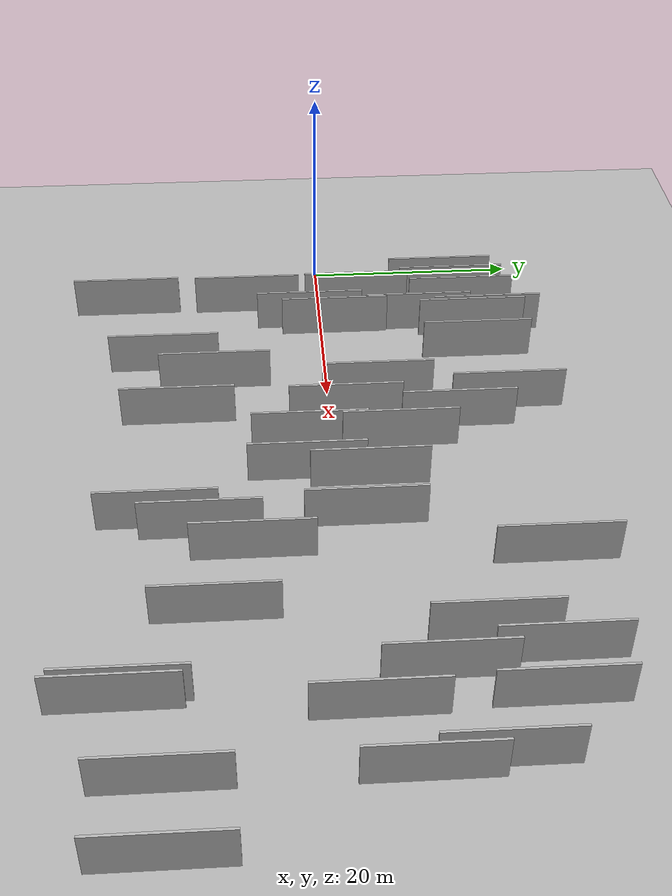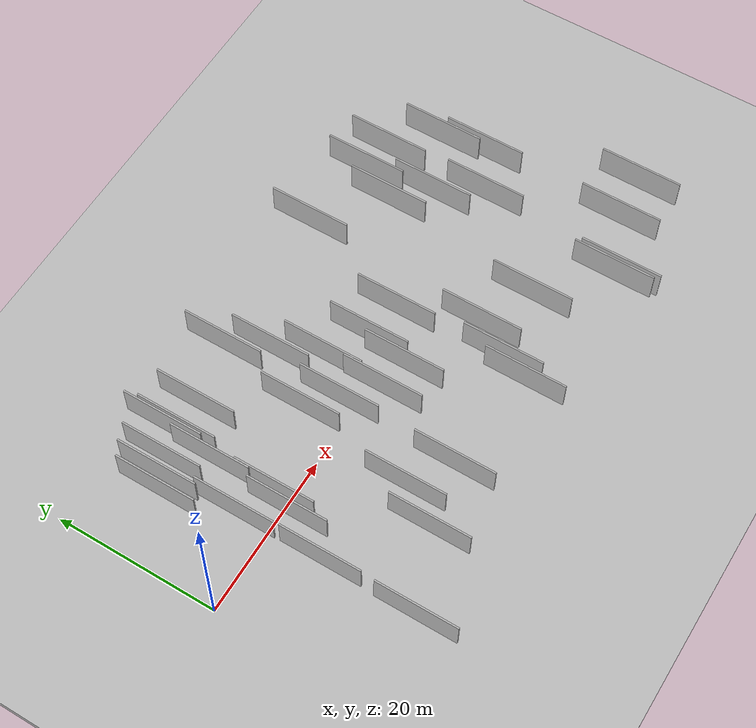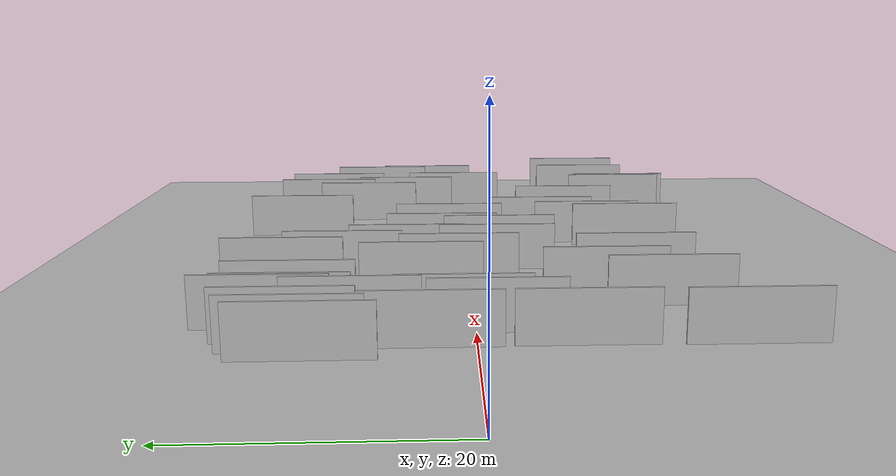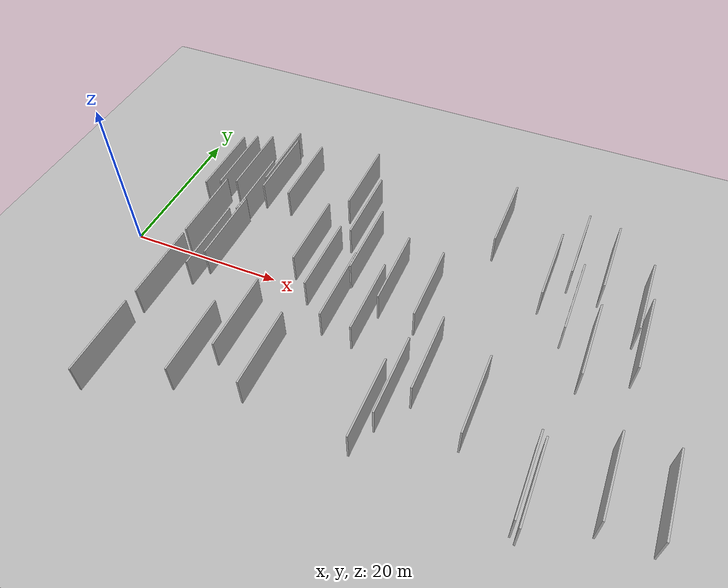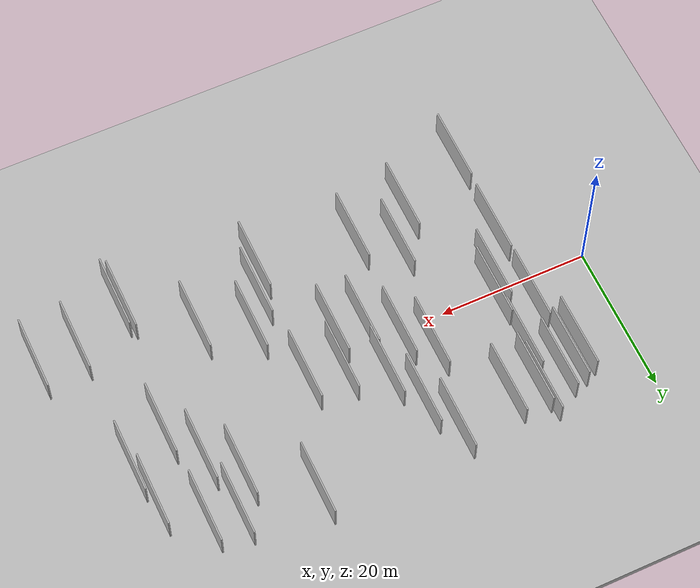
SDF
<?xml version="1.0" encoding="utf-8"?>

<sdf version="1.6">

   <world name="default">

      <gui fullscreen="0">

         <camera name="user_camera">

            <pose>-15 0 4.57585 0 0 0</pose>

            <view_controller>orbit</view_controller>

         </camera>

      </gui>

      <scene>

         <sky>

           <clouds>

             <speed>12</speed>

           </clouds>

         </sky>

         <ambient>0.4 0.4 0.4 1</ambient>

         <background>0.7 0.7 0.7 1</background>

         <shadows>1</shadows>

      </scene>

      <gravity>0 0 -9.8066</gravity>

      <magnetic_field>6e-06 2.3e-05 -4.2e-05</magnetic_field>

      <physics default="0" name="default_physics" type="ode">

         <ode>

            <solver>

               <type>quick</type>

               <iters>10</iters>

               <sor>1.0</sor>

               <use_dynamic_moi_rescaling>0</use_dynamic_moi_rescaling>

            </solver>

            <constraints>

               <cfm>0</cfm>

               <erp>0.2</erp>

               <contact_max_correcting_vel>100</contact_max_correcting_vel>

               <contact_surface_layer>0.001</contact_surface_layer>

            </constraints>

         </ode>

         <max_step_size>0.004</max_step_size>

         <real_time_factor>1</real_time_factor>

         <real_time_update_rate>250</real_time_update_rate>

      </physics>

      <light name="sun" type="directional">

         <cast_shadows>1</cast_shadows>

         <pose>0 0 10 0 0 0</pose>

         <diffuse>0.8 0.8 0.8 1</diffuse>

         <specular>0.2 0.2 0.2 1</specular>

         <attenuation>

            <range>1000</range>

            <constant>0.9</constant>

            <linear>0.01</linear>

            <quadratic>0.001</quadratic>

         </attenuation>

         <direction>-0.5 0.1 -0.9</direction>

      </light>

      <include>

         <name>ground_plane_1</name>

         <uri>model://HANNAS_ground_plane</uri>

         <pose>0 0 0  0 0 0</pose>

      </include>

      <include>

         <name>ground_plane_2</name>

         <uri>model://HANNAS_ground_plane</uri>

         <pose>100 0 0  0 0 0</pose>

      </include>

      <model name="HANNAS_wall_1">

         <static>1</static>

         <pose frame="">43.1296 -7.2342 2.5 0.000000 0.000000 1.570796</pose>

         <link name="link">

            <pose frame="">0 0 2.00 0 0 0</pose>

            <collision name="collision">

               <geometry>

                  <box>

                     <size>10.00 0.2 4.00</size>

                  </box>

               </geometry>

               <max_contacts>10</max_contacts>

               <surface>

                  <contact>

                     <ode/>

                  </contact>

                  <bounce/>

                  <friction>

                     <torsional>

                        <ode/>

                     </torsional>

                     <ode/>

                  </friction>

               </surface>

            </collision>

            <visual name="visual">

               <cast_shadows>0</cast_shadows>

               <geometry>

                  <box>

                     <size>10.00 0.2 4.00</size>

                  </box>

               </geometry>

               <material>

                  <script>

                     <uri>model://HANNAS_wall/materials/scripts</uri>

                     <uri>model://HANNAS_wall/materials/textures</uri>

                     <name>vrc/HANNAS_wall</name>

                  </script>

               </material>

            </visual>

            <self_collide>0</self_collide>

            <enable_wind>0</enable_wind>

            <kinematic>0</kinematic>

         </link>

      </model>

      <model name="HANNAS_wall_2">

         <static>1</static>

         <pose frame="">40.6272 -11.3651 2.5 0.000000 0.000000 1.570796</pose>

         <link name="link">

            <pose frame="">0 0 2.00 0 0 0</pose>

            <collision name="collision">

               <geometry>

                  <box>

                     <size>10.00 0.2 4.00</size>

                  </box>

               </geometry>

               <max_contacts>10</max_contacts>

               <surface>

                  <contact>

                     <ode/>

                  </contact>

                  <bounce/>

                  <friction>

                     <torsional>

                        <ode/>

                     </torsional>

                     <ode/>

                  </friction>

               </surface>

            </collision>

            <visual name="visual">

               <cast_shadows>0</cast_shadows>

               <geometry>

                  <box>

                     <size>10.00 0.2 4.00</size>

                  </box>

               </geometry>

               <material>

                  <script>

                     <uri>model://HANNAS_wall/materials/scripts</uri>

                     <uri>model://HANNAS_wall/materials/textures</uri>

                     <name>vrc/HANNAS_wall</name>

                  </script>

               </material>

            </visual>

            <self_collide>0</self_collide>

            <enable_wind>0</enable_wind>

            <kinematic>0</kinematic>

         </link>

      </model>

      <model name="HANNAS_wall_3">

         <static>1</static>

         <pose frame="">13.5556 1.1014 2.5 0.000000 0.000000 1.570796</pose>

         <link name="link">

            <pose frame="">0 0 2.00 0 0 0</pose>

            <collision name="collision">

               <geometry>

                  <box>

                     <size>10.00 0.2 4.00</size>

                  </box>

               </geometry>

               <max_contacts>10</max_contacts>

               <surface>

                  <contact>

                     <ode/>

                  </contact>

                  <bounce/>

                  <friction>

                     <torsional>

                        <ode/>

                     </torsional>

                     <ode/>

                  </friction>

               </surface>

            </collision>

            <visual name="visual">

               <cast_shadows>0</cast_shadows>

               <geometry>

                  <box>

                     <size>10.00 0.2 4.00</size>

                  </box>

               </geometry>

               <material>

                  <script>

                     <uri>model://HANNAS_wall/materials/scripts</uri>

                     <uri>model://HANNAS_wall/materials/textures</uri>

                     <name>vrc/HANNAS_wall</name>

                  </script>

               </material>

            </visual>

            <self_collide>0</self_collide>

            <enable_wind>0</enable_wind>

            <kinematic>0</kinematic>

         </link>

      </model>

      <model name="HANNAS_wall_4">

         <static>1</static>

         <pose frame="">23.7213 4.3001 2.5 0.000000 0.000000 1.570796</pose>

         <link name="link">

            <pose frame="">0 0 2.00 0 0 0</pose>

            <collision name="collision">

               <geometry>

                  <box>

                     <size>10.00 0.2 4.00</size>

                  </box>

               </geometry>

               <max_contacts>10</max_contacts>

               <surface>

                  <contact>

                     <ode/>

                  </contact>

                  <bounce/>

                  <friction>

                     <torsional>

                        <ode/>

                     </torsional>

                     <ode/>

                  </friction>

               </surface>

            </collision>

            <visual name="visual">

               <cast_shadows>0</cast_shadows>

               <geometry>

                  <box>

                     <size>10.00 0.2 4.00</size>

                  </box>

               </geometry>

               <material>

                  <script>

                     <uri>model://HANNAS_wall/materials/scripts</uri>

                     <uri>model://HANNAS_wall/materials/textures</uri>

                     <name>vrc/HANNAS_wall</name>

                  </script>

               </material>

            </visual>

            <self_collide>0</self_collide>

            <enable_wind>0</enable_wind>

            <kinematic>0</kinematic>

         </link>

      </model>

      <model name="HANNAS_wall_5">

         <static>1</static>

         <pose frame="">35.2452 2.6336 2.5 0.000000 0.000000 1.570796</pose>

         <link name="link">

            <pose frame="">0 0 2.00 0 0 0</pose>

            <collision name="collision">

               <geometry>

                  <box>

                     <size>10.00 0.2 4.00</size>

                  </box>

               </geometry>

               <max_contacts>10</max_contacts>

               <surface>

                  <contact>

                     <ode/>

                  </contact>

                  <bounce/>

                  <friction>

                     <torsional>

                        <ode/>

                     </torsional>

                     <ode/>

                  </friction>

               </surface>

            </collision>

            <visual name="visual">

               <cast_shadows>0</cast_shadows>

               <geometry>

                  <box>

                     <size>10.00 0.2 4.00</size>

                  </box>

               </geometry>

               <material>

                  <script>

                     <uri>model://HANNAS_wall/materials/scripts</uri>

                     <uri>model://HANNAS_wall/materials/textures</uri>

                     <name>vrc/HANNAS_wall</name>

                  </script>

               </material>

            </visual>

            <self_collide>0</self_collide>

            <enable_wind>0</enable_wind>

            <kinematic>0</kinematic>

         </link>

      </model>

      <model name="HANNAS_wall_6">

         <static>1</static>

         <pose frame="">12.4644 -1.2200 2.5 0.000000 0.000000 1.570796</pose>

         <link name="link">

            <pose frame="">0 0 2.00 0 0 0</pose>

            <collision name="collision">

               <geometry>

                  <box>

                     <size>10.00 0.2 4.00</size>

                  </box>

               </geometry>

               <max_contacts>10</max_contacts>

               <surface>

                  <contact>

                     <ode/>

                  </contact>

                  <bounce/>

                  <friction>

                     <torsional>

                        <ode/>

                     </torsional>

                     <ode/>

                  </friction>

               </surface>

            </collision>

            <visual name="visual">

               <cast_shadows>0</cast_shadows>

               <geometry>

                  <box>

                     <size>10.00 0.2 4.00</size>

                  </box>

               </geometry>

               <material>

                  <script>

                     <uri>model://HANNAS_wall/materials/scripts</uri>

                     <uri>model://HANNAS_wall/materials/textures</uri>

                     <name>vrc/HANNAS_wall</name>

                  </script>

               </material>

            </visual>

            <self_collide>0</self_collide>

            <enable_wind>0</enable_wind>

            <kinematic>0</kinematic>

         </link>

      </model>

      <model name="HANNAS_wall_7">

         <static>1</static>

         <pose frame="">30.2759 -2.1387 2.5 0.000000 0.000000 1.570796</pose>

         <link name="link">

            <pose frame="">0 0 2.00 0 0 0</pose>

            <collision name="collision">

               <geometry>

                  <box>

                     <size>10.00 0.2 4.00</size>

                  </box>

               </geometry>

               <max_contacts>10</max_contacts>

               <surface>

                  <contact>

                     <ode/>

                  </contact>

                  <bounce/>

                  <friction>

                     <torsional>

                        <ode/>

                     </torsional>

                     <ode/>

                  </friction>

               </surface>

            </collision>

            <visual name="visual">

               <cast_shadows>0</cast_shadows>

               <geometry>

                  <box>

                     <size>10.00 0.2 4.00</size>

                  </box>

               </geometry>

               <material>

                  <script>

                     <uri>model://HANNAS_wall/materials/scripts</uri>

                     <uri>model://HANNAS_wall/materials/textures</uri>

                     <name>vrc/HANNAS_wall</name>

                  </script>

               </material>

            </visual>

            <self_collide>0</self_collide>

            <enable_wind>0</enable_wind>

            <kinematic>0</kinematic>

         </link>

      </model>

      <model name="HANNAS_wall_8">

         <static>1</static>

         <pose frame="">49.4939 -10.1661 2.5 0.000000 0.000000 1.570796</pose>

         <link name="link">

            <pose frame="">0 0 2.00 0 0 0</pose>

            <collision name="collision">

               <geometry>

                  <box>

                     <size>10.00 0.2 4.00</size>

                  </box>

               </geometry>

               <max_contacts>10</max_contacts>

               <surface>

                  <contact>

                     <ode/>

                  </contact>

                  <bounce/>

                  <friction>

                     <torsional>

                        <ode/>

                     </torsional>

                     <ode/>

                  </friction>

               </surface>

            </collision>

            <visual name="visual">

               <cast_shadows>0</cast_shadows>

               <geometry>

                  <box>

                     <size>10.00 0.2 4.00</size>

                  </box>

               </geometry>

               <material>

                  <script>

                     <uri>model://HANNAS_wall/materials/scripts</uri>

                     <uri>model://HANNAS_wall/materials/textures</uri>

                     <name>vrc/HANNAS_wall</name>

                  </script>

               </material>

            </visual>

            <self_collide>0</self_collide>

            <enable_wind>0</enable_wind>

            <kinematic>0</kinematic>

         </link>

      </model>

      <model name="HANNAS_wall_9">

         <static>1</static>

         <pose frame="">18.6038 -14.9351 2.5 0.000000 0.000000 1.570796</pose>

         <link name="link">

            <pose frame="">0 0 2.00 0 0 0</pose>

            <collision name="collision">

               <geometry>

                  <box>

                     <size>10.00 0.2 4.00</size>

                  </box>

               </geometry>

               <max_contacts>10</max_contacts>

               <surface>

                  <contact>

                     <ode/>

                  </contact>

                  <bounce/>

                  <friction>

                     <torsional>

                        <ode/>

                     </torsional>

                     <ode/>

                  </friction>

               </surface>

            </collision>

            <visual name="visual">

               <cast_shadows>0</cast_shadows>

               <geometry>

                  <box>

                     <size>10.00 0.2 4.00</size>

                  </box>

               </geometry>

               <material>

                  <script>

                     <uri>model://HANNAS_wall/materials/scripts</uri>

                     <uri>model://HANNAS_wall/materials/textures</uri>

                     <name>vrc/HANNAS_wall</name>

                  </script>

               </material>

            </visual>

            <self_collide>0</self_collide>

            <enable_wind>0</enable_wind>

            <kinematic>0</kinematic>

         </link>

      </model>

      <model name="HANNAS_wall_10">

         <static>1</static>

         <pose frame="">39.9209 1.9110 2.5 0.000000 0.000000 1.570796</pose>

         <link name="link">

            <pose frame="">0 0 2.00 0 0 0</pose>

            <collision name="collision">

               <geometry>

                  <box>

                     <size>10.00 0.2 4.00</size>

                  </box>

               </geometry>

               <max_contacts>10</max_contacts>

               <surface>

                  <contact>

                     <ode/>

                  </contact>

                  <bounce/>

                  <friction>

                     <torsional>

                        <ode/>

                     </torsional>

                     <ode/>

                  </friction>

               </surface>

            </collision>

            <visual name="visual">

               <cast_shadows>0</cast_shadows>

               <geometry>

                  <box>

                     <size>10.00 0.2 4.00</size>

                  </box>

               </geometry>

               <material>

                  <script>

                     <uri>model://HANNAS_wall/materials/scripts</uri>

                     <uri>model://HANNAS_wall/materials/textures</uri>

                     <name>vrc/HANNAS_wall</name>

                  </script>

               </material>

            </visual>

            <self_collide>0</self_collide>

            <enable_wind>0</enable_wind>

            <kinematic>0</kinematic>

         </link>

      </model>

      <model name="HANNAS_wall_11">

         <static>1</static>

         <pose frame="">9.5215 -7.1750 2.5 0.000000 0.000000 1.570796</pose>

         <link name="link">

            <pose frame="">0 0 2.00 0 0 0</pose>

            <collision name="collision">

               <geometry>

                  <box>

                     <size>10.00 0.2 4.00</size>

                  </box>

               </geometry>

               <max_contacts>10</max_contacts>

               <surface>

                  <contact>

                     <ode/>

                  </contact>

                  <bounce/>

                  <friction>

                     <torsional>

                        <ode/>

                     </torsional>

                     <ode/>

                  </friction>

               </surface>

            </collision>

            <visual name="visual">

               <cast_shadows>0</cast_shadows>

               <geometry>

                  <box>

                     <size>10.00 0.2 4.00</size>

                  </box>

               </geometry>

               <material>

                  <script>

                     <uri>model://HANNAS_wall/materials/scripts</uri>

                     <uri>model://HANNAS_wall/materials/textures</uri>

                     <name>vrc/HANNAS_wall</name>

                  </script>

               </material>

            </visual>

            <self_collide>0</self_collide>

            <enable_wind>0</enable_wind>

            <kinematic>0</kinematic>

         </link>

      </model>

      <model name="HANNAS_wall_12">

         <static>1</static>

         <pose frame="">14.4354 14.1399 2.5 0.000000 0.000000 1.570796</pose>

         <link name="link">

            <pose frame="">0 0 2.00 0 0 0</pose>

            <collision name="collision">

               <geometry>

                  <box>

                     <size>10.00 0.2 4.00</size>

                  </box>

               </geometry>

               <max_contacts>10</max_contacts>

               <surface>

                  <contact>

                     <ode/>

                  </contact>

                  <bounce/>

                  <friction>

                     <torsional>

                        <ode/>

                     </torsional>

                     <ode/>

                  </friction>

               </surface>

            </collision>

            <visual name="visual">

               <cast_shadows>0</cast_shadows>

               <geometry>

                  <box>

                     <size>10.00 0.2 4.00</size>

                  </box>

               </geometry>

               <material>

                  <script>

                     <uri>model://HANNAS_wall/materials/scripts</uri>

                     <uri>model://HANNAS_wall/materials/textures</uri>

                     <name>vrc/HANNAS_wall</name>

                  </script>

               </material>

            </visual>

            <self_collide>0</self_collide>

            <enable_wind>0</enable_wind>

            <kinematic>0</kinematic>

         </link>

      </model>

      <model name="HANNAS_wall_13">

         <static>1</static>

         <pose frame="">26.7496 1.2263 2.5 0.000000 0.000000 1.570796</pose>

         <link name="link">

            <pose frame="">0 0 2.00 0 0 0</pose>

            <collision name="collision">

               <geometry>

                  <box>

                     <size>10.00 0.2 4.00</size>

                  </box>

               </geometry>

               <max_contacts>10</max_contacts>

               <surface>

                  <contact>

                     <ode/>

                  </contact>

                  <bounce/>

                  <friction>

                     <torsional>

                        <ode/>

                     </torsional>

                     <ode/>

                  </friction>

               </surface>

            </collision>

            <visual name="visual">

               <cast_shadows>0</cast_shadows>

               <geometry>

                  <box>

                     <size>10.00 0.2 4.00</size>

                  </box>

               </geometry>

               <material>

                  <script>

                     <uri>model://HANNAS_wall/materials/scripts</uri>

                     <uri>model://HANNAS_wall/materials/textures</uri>

                     <name>vrc/HANNAS_wall</name>

                  </script>

               </material>

            </visual>

            <self_collide>0</self_collide>

            <enable_wind>0</enable_wind>

            <kinematic>0</kinematic>

         </link>

      </model>

      <model name="HANNAS_wall_14">

         <static>1</static>

         <pose frame="">25.8029 15.7336 2.5 0.000000 0.000000 1.570796</pose>

         <link name="link">

            <pose frame="">0 0 2.00 0 0 0</pose>

            <collision name="collision">

               <geometry>

                  <box>

                     <size>10.00 0.2 4.00</size>

                  </box>

               </geometry>

               <max_contacts>10</max_contacts>

               <surface>

                  <contact>

                     <ode/>

                  </contact>

                  <bounce/>

                  <friction>

                     <torsional>

                        <ode/>

                     </torsional>

                     <ode/>

                  </friction>

               </surface>

            </collision>

            <visual name="visual">

               <cast_shadows>0</cast_shadows>

               <geometry>

                  <box>

                     <size>10.00 0.2 4.00</size>

                  </box>

               </geometry>

               <material>

                  <script>

                     <uri>model://HANNAS_wall/materials/scripts</uri>

                     <uri>model://HANNAS_wall/materials/textures</uri>

                     <name>vrc/HANNAS_wall</name>

                  </script>

               </material>

            </visual>

            <self_collide>0</self_collide>

            <enable_wind>0</enable_wind>

            <kinematic>0</kinematic>

         </link>

      </model>

      <model name="HANNAS_wall_15">

         <static>1</static>

         <pose frame="">10.7797 13.5346 2.5 0.000000 0.000000 1.570796</pose>

         <link name="link">

            <pose frame="">0 0 2.00 0 0 0</pose>

            <collision name="collision">

               <geometry>

                  <box>

                     <size>10.00 0.2 4.00</size>

                  </box>

               </geometry>

               <max_contacts>10</max_contacts>

               <surface>

                  <contact>

                     <ode/>

                  </contact>

                  <bounce/>

                  <friction>

                     <torsional>

                        <ode/>

                     </torsional>

                     <ode/>

                  </friction>

               </surface>

            </collision>

            <visual name="visual">

               <cast_shadows>0</cast_shadows>

               <geometry>

                  <box>

                     <size>10.00 0.2 4.00</size>

                  </box>

               </geometry>

               <material>

                  <script>

                     <uri>model://HANNAS_wall/materials/scripts</uri>

                     <uri>model://HANNAS_wall/materials/textures</uri>

                     <name>vrc/HANNAS_wall</name>

                  </script>

               </material>

            </visual>

            <self_collide>0</self_collide>

            <enable_wind>0</enable_wind>

            <kinematic>0</kinematic>

         </link>

      </model>

      <model name="HANNAS_wall_16">

         <static>1</static>

         <pose frame="">21.4936 -10.2815 2.5 0.000000 0.000000 1.570796</pose>

         <link name="link">

            <pose frame="">0 0 2.00 0 0 0</pose>

            <collision name="collision">

               <geometry>

                  <box>

                     <size>10.00 0.2 4.00</size>

                  </box>

               </geometry>

               <max_contacts>10</max_contacts>

               <surface>

                  <contact>

                     <ode/>

                  </contact>

                  <bounce/>

                  <friction>

                     <torsional>

                        <ode/>

                     </torsional>

                     <ode/>

                  </friction>

               </surface>

            </collision>

            <visual name="visual">

               <cast_shadows>0</cast_shadows>

               <geometry>

                  <box>

                     <size>10.00 0.2 4.00</size>

                  </box>

               </geometry>

               <material>

                  <script>

                     <uri>model://HANNAS_wall/materials/scripts</uri>

                     <uri>model://HANNAS_wall/materials/textures</uri>

                     <name>vrc/HANNAS_wall</name>

                  </script>

               </material>

            </visual>

            <self_collide>0</self_collide>

            <enable_wind>0</enable_wind>

            <kinematic>0</kinematic>

         </link>

      </model>

      <model name="HANNAS_wall_17">

         <static>1</static>

         <pose frame="">26.3297 -13.5076 2.5 0.000000 0.000000 1.570796</pose>

         <link name="link">

            <pose frame="">0 0 2.00 0 0 0</pose>

            <collision name="collision">

               <geometry>

                  <box>

                     <size>10.00 0.2 4.00</size>

                  </box>

               </geometry>

               <max_contacts>10</max_contacts>

               <surface>

                  <contact>

                     <ode/>

                  </contact>

                  <bounce/>

                  <friction>

                     <torsional>

                        <ode/>

                     </torsional>

                     <ode/>

                  </friction>

               </surface>

            </collision>

            <visual name="visual">

               <cast_shadows>0</cast_shadows>

               <geometry>

                  <box>

                     <size>10.00 0.2 4.00</size>

                  </box>

               </geometry>

               <material>

                  <script>

                     <uri>model://HANNAS_wall/materials/scripts</uri>

                     <uri>model://HANNAS_wall/materials/textures</uri>

                     <name>vrc/HANNAS_wall</name>

                  </script>

               </material>

            </visual>

            <self_collide>0</self_collide>

            <enable_wind>0</enable_wind>

            <kinematic>0</kinematic>

         </link>

      </model>

      <model name="HANNAS_wall_18">

         <static>1</static>

         <pose frame="">57.3472 -17.2566 2.5 0.000000 0.000000 1.570796</pose>

         <link name="link">

            <pose frame="">0 0 2.00 0 0 0</pose>

            <collision name="collision">

               <geometry>

                  <box>

                     <size>10.00 0.2 4.00</size>

                  </box>

               </geometry>

               <max_contacts>10</max_contacts>

               <surface>

                  <contact>

                     <ode/>

                  </contact>

                  <bounce/>

                  <friction>

                     <torsional>

                        <ode/>

                     </torsional>

                     <ode/>

                  </friction>

               </surface>

            </collision>

            <visual name="visual">

               <cast_shadows>0</cast_shadows>

               <geometry>

                  <box>

                     <size>10.00 0.2 4.00</size>

                  </box>

               </geometry>

               <material>

                  <script>

                     <uri>model://HANNAS_wall/materials/scripts</uri>

                     <uri>model://HANNAS_wall/materials/textures</uri>

                     <name>vrc/HANNAS_wall</name>

                  </script>

               </material>

            </visual>

            <self_collide>0</self_collide>

            <enable_wind>0</enable_wind>

            <kinematic>0</kinematic>

         </link>

      </model>

      <model name="HANNAS_wall_19">

         <static>1</static>

         <pose frame="">52.2607 10.3755 2.5 0.000000 0.000000 1.570796</pose>

         <link name="link">

            <pose frame="">0 0 2.00 0 0 0</pose>

            <collision name="collision">

               <geometry>

                  <box>

                     <size>10.00 0.2 4.00</size>

                  </box>

               </geometry>

               <max_contacts>10</max_contacts>

               <surface>

                  <contact>

                     <ode/>

                  </contact>

                  <bounce/>

                  <friction>

                     <torsional>

                        <ode/>

                     </torsional>

                     <ode/>

                  </friction>

               </surface>

            </collision>

            <visual name="visual">

               <cast_shadows>0</cast_shadows>

               <geometry>

                  <box>

                     <size>10.00 0.2 4.00</size>

                  </box>

               </geometry>

               <material>

                  <script>

                     <uri>model://HANNAS_wall/materials/scripts</uri>

                     <uri>model://HANNAS_wall/materials/textures</uri>

                     <name>vrc/HANNAS_wall</name>

                  </script>

               </material>

            </visual>

            <self_collide>0</self_collide>

            <enable_wind>0</enable_wind>

            <kinematic>0</kinematic>

         </link>

      </model>

      <model name="HANNAS_wall_20">

         <static>1</static>

         <pose frame="">7.2101 11.8777 2.5 0.000000 0.000000 1.570796</pose>

         <link name="link">

            <pose frame="">0 0 2.00 0 0 0</pose>

            <collision name="collision">

               <geometry>

                  <box>

                     <size>10.00 0.2 4.00</size>

                  </box>

               </geometry>

               <max_contacts>10</max_contacts>

               <surface>

                  <contact>

                     <ode/>

                  </contact>

                  <bounce/>

                  <friction>

                     <torsional>

                        <ode/>

                     </torsional>

                     <ode/>

                  </friction>

               </surface>

            </collision>

            <visual name="visual">

               <cast_shadows>0</cast_shadows>

               <geometry>

                  <box>

                     <size>10.00 0.2 4.00</size>

                  </box>

               </geometry>

               <material>

                  <script>

                     <uri>model://HANNAS_wall/materials/scripts</uri>

                     <uri>model://HANNAS_wall/materials/textures</uri>

                     <name>vrc/HANNAS_wall</name>

                  </script>

               </material>

            </visual>

            <self_collide>0</self_collide>

            <enable_wind>0</enable_wind>

            <kinematic>0</kinematic>

         </link>

      </model>

      <model name="HANNAS_wall_21">

         <static>1</static>

         <pose frame="">9.3656 -18.8010 2.5 0.000000 0.000000 1.570796</pose>

         <link name="link">

            <pose frame="">0 0 2.00 0 0 0</pose>

            <collision name="collision">

               <geometry>

                  <box>

                     <size>10.00 0.2 4.00</size>

                  </box>

               </geometry>

               <max_contacts>10</max_contacts>

               <surface>

                  <contact>

                     <ode/>

                  </contact>

                  <bounce/>

                  <friction>

                     <torsional>

                        <ode/>

                     </torsional>

                     <ode/>

                  </friction>

               </surface>

            </collision>

            <visual name="visual">

               <cast_shadows>0</cast_shadows>

               <geometry>

                  <box>

                     <size>10.00 0.2 4.00</size>

                  </box>

               </geometry>

               <material>

                  <script>

                     <uri>model://HANNAS_wall/materials/scripts</uri>

                     <uri>model://HANNAS_wall/materials/textures</uri>

                     <name>vrc/HANNAS_wall</name>

                  </script>

               </material>

            </visual>

            <self_collide>0</self_collide>

            <enable_wind>0</enable_wind>

            <kinematic>0</kinematic>

         </link>

      </model>

      <model name="HANNAS_wall_22">

         <static>1</static>

         <pose frame="">63.4081 9.5469 2.5 0.000000 0.000000 1.570796</pose>

         <link name="link">

            <pose frame="">0 0 2.00 0 0 0</pose>

            <collision name="collision">

               <geometry>

                  <box>

                     <size>10.00 0.2 4.00</size>

                  </box>

               </geometry>

               <max_contacts>10</max_contacts>

               <surface>

                  <contact>

                     <ode/>

                  </contact>

                  <bounce/>

                  <friction>

                     <torsional>

                        <ode/>

                     </torsional>

                     <ode/>

                  </friction>

               </surface>

            </collision>

            <visual name="visual">

               <cast_shadows>0</cast_shadows>

               <geometry>

                  <box>

                     <size>10.00 0.2 4.00</size>

                  </box>

               </geometry>

               <material>

                  <script>

                     <uri>model://HANNAS_wall/materials/scripts</uri>

                     <uri>model://HANNAS_wall/materials/textures</uri>

                     <name>vrc/HANNAS_wall</name>

                  </script>

               </material>

            </visual>

            <self_collide>0</self_collide>

            <enable_wind>0</enable_wind>

            <kinematic>0</kinematic>

         </link>

      </model>

      <model name="HANNAS_wall_23">

         <static>1</static>

         <pose frame="">9.4467 3.4513 2.5 0.000000 0.000000 1.570796</pose>

         <link name="link">

            <pose frame="">0 0 2.00 0 0 0</pose>

            <collision name="collision">

               <geometry>

                  <box>

                     <size>10.00 0.2 4.00</size>

                  </box>

               </geometry>

               <max_contacts>10</max_contacts>

               <surface>

                  <contact>

                     <ode/>

                  </contact>

                  <bounce/>

                  <friction>

                     <torsional>

                        <ode/>

                     </torsional>

                     <ode/>

                  </friction>

               </surface>

            </collision>

            <visual name="visual">

               <cast_shadows>0</cast_shadows>

               <geometry>

                  <box>

                     <size>10.00 0.2 4.00</size>

                  </box>

               </geometry>

               <material>

                  <script>

                     <uri>model://HANNAS_wall/materials/scripts</uri>

                     <uri>model://HANNAS_wall/materials/textures</uri>

                     <name>vrc/HANNAS_wall</name>

                  </script>

               </material>

            </visual>

            <self_collide>0</self_collide>

            <enable_wind>0</enable_wind>

            <kinematic>0</kinematic>

         </link>

      </model>

      <model name="HANNAS_wall_24">

         <static>1</static>

         <pose frame="">28.1330 11.0088 2.5 0.000000 0.000000 1.570796</pose>

         <link name="link">

            <pose frame="">0 0 2.00 0 0 0</pose>

            <collision name="collision">

               <geometry>

                  <box>

                     <size>10.00 0.2 4.00</size>

                  </box>

               </geometry>

               <max_contacts>10</max_contacts>

               <surface>

                  <contact>

                     <ode/>

                  </contact>

                  <bounce/>

                  <friction>

                     <torsional>

                        <ode/>

                     </torsional>

                     <ode/>

                  </friction>

               </surface>

            </collision>

            <visual name="visual">

               <cast_shadows>0</cast_shadows>

               <geometry>

                  <box>

                     <size>10.00 0.2 4.00</size>

                  </box>

               </geometry>

               <material>

                  <script>

                     <uri>model://HANNAS_wall/materials/scripts</uri>

                     <uri>model://HANNAS_wall/materials/textures</uri>

                     <name>vrc/HANNAS_wall</name>

                  </script>

               </material>

            </visual>

            <self_collide>0</self_collide>

            <enable_wind>0</enable_wind>

            <kinematic>0</kinematic>

         </link>

      </model>

      <model name="HANNAS_wall_25">

         <static>1</static>

         <pose frame="">58.5657 14.1242 2.5 0.000000 0.000000 1.570796</pose>

         <link name="link">

            <pose frame="">0 0 2.00 0 0 0</pose>

            <collision name="collision">

               <geometry>

                  <box>

                     <size>10.00 0.2 4.00</size>

                  </box>

               </geometry>

               <max_contacts>10</max_contacts>

               <surface>

                  <contact>

                     <ode/>

                  </contact>

                  <bounce/>

                  <friction>

                     <torsional>

                        <ode/>

                     </torsional>

                     <ode/>

                  </friction>

               </surface>

            </collision>

            <visual name="visual">

               <cast_shadows>0</cast_shadows>

               <geometry>

                  <box>

                     <size>10.00 0.2 4.00</size>

                  </box>

               </geometry>

               <material>

                  <script>

                     <uri>model://HANNAS_wall/materials/scripts</uri>

                     <uri>model://HANNAS_wall/materials/textures</uri>

                     <name>vrc/HANNAS_wall</name>

                  </script>

               </material>

            </visual>

            <self_collide>0</self_collide>

            <enable_wind>0</enable_wind>

            <kinematic>0</kinematic>

         </link>

      </model>

      <model name="HANNAS_wall_26">

         <static>1</static>

         <pose frame="">34.1815 -2.5512 2.5 0.000000 0.000000 1.570796</pose>

         <link name="link">

            <pose frame="">0 0 2.00 0 0 0</pose>

            <collision name="collision">

               <geometry>

                  <box>

                     <size>10.00 0.2 4.00</size>

                  </box>

               </geometry>

               <max_contacts>10</max_contacts>

               <surface>

                  <contact>

                     <ode/>

                  </contact>

                  <bounce/>

                  <friction>

                     <torsional>

                        <ode/>

                     </torsional>

                     <ode/>

                  </friction>

               </surface>

            </collision>

            <visual name="visual">

               <cast_shadows>0</cast_shadows>

               <geometry>

                  <box>

                     <size>10.00 0.2 4.00</size>

                  </box>

               </geometry>

               <material>

                  <script>

                     <uri>model://HANNAS_wall/materials/scripts</uri>

                     <uri>model://HANNAS_wall/materials/textures</uri>

                     <name>vrc/HANNAS_wall</name>

                  </script>

               </material>

            </visual>

            <self_collide>0</self_collide>

            <enable_wind>0</enable_wind>

            <kinematic>0</kinematic>

         </link>

      </model>

      <model name="HANNAS_wall_27">

         <static>1</static>

         <pose frame="">44.8409 16.4582 2.5 0.000000 0.000000 1.570796</pose>

         <link name="link">

            <pose frame="">0 0 2.00 0 0 0</pose>

            <collision name="collision">

               <geometry>

                  <box>

                     <size>10.00 0.2 4.00</size>

                  </box>

               </geometry>

               <max_contacts>10</max_contacts>

               <surface>

                  <contact>

                     <ode/>

                  </contact>

                  <bounce/>

                  <friction>

                     <torsional>

                        <ode/>

                     </torsional>

                     <ode/>

                  </friction>

               </surface>

            </collision>

            <visual name="visual">

               <cast_shadows>0</cast_shadows>

               <geometry>

                  <box>

                     <size>10.00 0.2 4.00</size>

                  </box>

               </geometry>

               <material>

                  <script>

                     <uri>model://HANNAS_wall/materials/scripts</uri>

                     <uri>model://HANNAS_wall/materials/textures</uri>

                     <name>vrc/HANNAS_wall</name>

                  </script>

               </material>

            </visual>

            <self_collide>0</self_collide>

            <enable_wind>0</enable_wind>

            <kinematic>0</kinematic>

         </link>

      </model>

      <model name="HANNAS_wall_28">

         <static>1</static>

         <pose frame="">54.6555 14.8681 2.5 0.000000 0.000000 1.570796</pose>

         <link name="link">

            <pose frame="">0 0 2.00 0 0 0</pose>

            <collision name="collision">

               <geometry>

                  <box>

                     <size>10.00 0.2 4.00</size>

                  </box>

               </geometry>

               <max_contacts>10</max_contacts>

               <surface>

                  <contact>

                     <ode/>

                  </contact>

                  <bounce/>

                  <friction>

                     <torsional>

                        <ode/>

                     </torsional>

                     <ode/>

                  </friction>

               </surface>

            </collision>

            <visual name="visual">

               <cast_shadows>0</cast_shadows>

               <geometry>

                  <box>

                     <size>10.00 0.2 4.00</size>

                  </box>

               </geometry>

               <material>

                  <script>

                     <uri>model://HANNAS_wall/materials/scripts</uri>

                     <uri>model://HANNAS_wall/materials/textures</uri>

                     <name>vrc/HANNAS_wall</name>

                  </script>

               </material>

            </visual>

            <self_collide>0</self_collide>

            <enable_wind>0</enable_wind>

            <kinematic>0</kinematic>

         </link>

      </model>

      <model name="HANNAS_wall_29">

         <static>1</static>

         <pose frame="">13.9907 15.6175 2.5 0.000000 0.000000 1.570796</pose>

         <link name="link">

            <pose frame="">0 0 2.00 0 0 0</pose>

            <collision name="collision">

               <geometry>

                  <box>

                     <size>10.00 0.2 4.00</size>

                  </box>

               </geometry>

               <max_contacts>10</max_contacts>

               <surface>

                  <contact>

                     <ode/>

                  </contact>

                  <bounce/>

                  <friction>

                     <torsional>

                        <ode/>

                     </torsional>

                     <ode/>

                  </friction>

               </surface>

            </collision>

            <visual name="visual">

               <cast_shadows>0</cast_shadows>

               <geometry>

                  <box>

                     <size>10.00 0.2 4.00</size>

                  </box>

               </geometry>

               <material>

                  <script>

                     <uri>model://HANNAS_wall/materials/scripts</uri>

                     <uri>model://HANNAS_wall/materials/textures</uri>

                     <name>vrc/HANNAS_wall</name>

                  </script>

               </material>

            </visual>

            <self_collide>0</self_collide>

            <enable_wind>0</enable_wind>

            <kinematic>0</kinematic>

         </link>

      </model>

      <model name="HANNAS_wall_30">

         <static>1</static>

         <pose frame="">30.4949 5.6492 2.5 0.000000 0.000000 1.570796</pose>

         <link name="link">

            <pose frame="">0 0 2.00 0 0 0</pose>

            <collision name="collision">

               <geometry>

                  <box>

                     <size>10.00 0.2 4.00</size>

                  </box>

               </geometry>

               <max_contacts>10</max_contacts>

               <surface>

                  <contact>

                     <ode/>

                  </contact>

                  <bounce/>

                  <friction>

                     <torsional>

                        <ode/>

                     </torsional>

                     <ode/>

                  </friction>

               </surface>

            </collision>

            <visual name="visual">

               <cast_shadows>0</cast_shadows>

               <geometry>

                  <box>

                     <size>10.00 0.2 4.00</size>

                  </box>

               </geometry>

               <material>

                  <script>

                     <uri>model://HANNAS_wall/materials/scripts</uri>

                     <uri>model://HANNAS_wall/materials/textures</uri>

                     <name>vrc/HANNAS_wall</name>

                  </script>

               </material>

            </visual>

            <self_collide>0</self_collide>

            <enable_wind>0</enable_wind>

            <kinematic>0</kinematic>

         </link>

      </model>

      <model name="HANNAS_wall_31">

         <static>1</static>

         <pose frame="">64.0809 -13.7380 2.5 0.000000 0.000000 1.570796</pose>

         <link name="link">

            <pose frame="">0 0 2.00 0 0 0</pose>

            <collision name="collision">

               <geometry>

                  <box>

                     <size>10.00 0.2 4.00</size>

                  </box>

               </geometry>

               <max_contacts>10</max_contacts>

               <surface>

                  <contact>

                     <ode/>

                  </contact>

                  <bounce/>

                  <friction>

                     <torsional>

                        <ode/>

                     </torsional>

                     <ode/>

                  </friction>

               </surface>

            </collision>

            <visual name="visual">

               <cast_shadows>0</cast_shadows>

               <geometry>

                  <box>

                     <size>10.00 0.2 4.00</size>

                  </box>

               </geometry>

               <material>

                  <script>

                     <uri>model://HANNAS_wall/materials/scripts</uri>

                     <uri>model://HANNAS_wall/materials/textures</uri>

                     <name>vrc/HANNAS_wall</name>

                  </script>

               </material>

            </visual>

            <self_collide>0</self_collide>

            <enable_wind>0</enable_wind>

            <kinematic>0</kinematic>

         </link>

      </model>

      <model name="HANNAS_wall_32">

         <static>1</static>

         <pose frame="">13.3314 9.0961 2.5 0.000000 0.000000 1.570796</pose>

         <link name="link">

            <pose frame="">0 0 2.00 0 0 0</pose>

            <collision name="collision">

               <geometry>

                  <box>

                     <size>10.00 0.2 4.00</size>

                  </box>

               </geometry>

               <max_contacts>10</max_contacts>

               <surface>

                  <contact>

                     <ode/>

                  </contact>

                  <bounce/>

                  <friction>

                     <torsional>

                        <ode/>

                     </torsional>

                     <ode/>

                  </friction>

               </surface>

            </collision>

            <visual name="visual">

               <cast_shadows>0</cast_shadows>

               <geometry>

                  <box>

                     <size>10.00 0.2 4.00</size>

                  </box>

               </geometry>

               <material>

                  <script>

                     <uri>model://HANNAS_wall/materials/scripts</uri>

                     <uri>model://HANNAS_wall/materials/textures</uri>

                     <name>vrc/HANNAS_wall</name>

                  </script>

               </material>

            </visual>

            <self_collide>0</self_collide>

            <enable_wind>0</enable_wind>

            <kinematic>0</kinematic>

         </link>

      </model>

      <model name="HANNAS_wall_33">

         <static>1</static>

         <pose frame="">39.3207 -14.8741 2.5 0.000000 0.000000 1.570796</pose>

         <link name="link">

            <pose frame="">0 0 2.00 0 0 0</pose>

            <collision name="collision">

               <geometry>

                  <box>

                     <size>10.00 0.2 4.00</size>

                  </box>

               </geometry>

               <max_contacts>10</max_contacts>

               <surface>

                  <contact>

                     <ode/>

                  </contact>

                  <bounce/>

                  <friction>

                     <torsional>

                        <ode/>

                     </torsional>

                     <ode/>

                  </friction>

               </surface>

            </collision>

            <visual name="visual">

               <cast_shadows>0</cast_shadows>

               <geometry>

                  <box>

                     <size>10.00 0.2 4.00</size>

                  </box>

               </geometry>

               <material>

                  <script>

                     <uri>model://HANNAS_wall/materials/scripts</uri>

                     <uri>model://HANNAS_wall/materials/textures</uri>

                     <name>vrc/HANNAS_wall</name>

                  </script>

               </material>

            </visual>

            <self_collide>0</self_collide>

            <enable_wind>0</enable_wind>

            <kinematic>0</kinematic>

         </link>

      </model>

      <model name="HANNAS_wall_34">

         <static>1</static>

         <pose frame="">58.8775 1.2247 2.5 0.000000 0.000000 1.570796</pose>

         <link name="link">

            <pose frame="">0 0 2.00 0 0 0</pose>

            <collision name="collision">

               <geometry>

                  <box>

                     <size>10.00 0.2 4.00</size>

                  </box>

               </geometry>

               <max_contacts>10</max_contacts>

               <surface>

                  <contact>

                     <ode/>

                  </contact>

                  <bounce/>

                  <friction>

                     <torsional>

                        <ode/>

                     </torsional>

                     <ode/>

                  </friction>

               </surface>

            </collision>

            <visual name="visual">

               <cast_shadows>0</cast_shadows>

               <geometry>

                  <box>

                     <size>10.00 0.2 4.00</size>

                  </box>

               </geometry>

               <material>

                  <script>

                     <uri>model://HANNAS_wall/materials/scripts</uri>

                     <uri>model://HANNAS_wall/materials/textures</uri>

                     <name>vrc/HANNAS_wall</name>

                  </script>

               </material>

            </visual>

            <self_collide>0</self_collide>

            <enable_wind>0</enable_wind>

            <kinematic>0</kinematic>

         </link>

      </model>

      <model name="HANNAS_wall_35">

         <static>1</static>

         <pose frame="">56.7373 -16.6904 2.5 0.000000 0.000000 1.570796</pose>

         <link name="link">

            <pose frame="">0 0 2.00 0 0 0</pose>

            <collision name="collision">

               <geometry>

                  <box>

                     <size>10.00 0.2 4.00</size>

                  </box>

               </geometry>

               <max_contacts>10</max_contacts>

               <surface>

                  <contact>

                     <ode/>

                  </contact>

                  <bounce/>

                  <friction>

                     <torsional>

                        <ode/>

                     </torsional>

                     <ode/>

                  </friction>

               </surface>

            </collision>

            <visual name="visual">

               <cast_shadows>0</cast_shadows>

               <geometry>

                  <box>

                     <size>10.00 0.2 4.00</size>

                  </box>

               </geometry>

               <material>

                  <script>

                     <uri>model://HANNAS_wall/materials/scripts</uri>

                     <uri>model://HANNAS_wall/materials/textures</uri>

                     <name>vrc/HANNAS_wall</name>

                  </script>

               </material>

            </visual>

            <self_collide>0</self_collide>

            <enable_wind>0</enable_wind>

            <kinematic>0</kinematic>

         </link>

      </model>

      <model name="HANNAS_wall_36">

         <static>1</static>

         <pose frame="">18.0510 14.0960 2.5 0.000000 0.000000 1.570796</pose>

         <link name="link">

            <pose frame="">0 0 2.00 0 0 0</pose>

            <collision name="collision">

               <geometry>

                  <box>

                     <size>10.00 0.2 4.00</size>

                  </box>

               </geometry>

               <max_contacts>10</max_contacts>

               <surface>

                  <contact>

                     <ode/>

                  </contact>

                  <bounce/>

                  <friction>

                     <torsional>

                        <ode/>

                     </torsional>

                     <ode/>

                  </friction>

               </surface>

            </collision>

            <visual name="visual">

               <cast_shadows>0</cast_shadows>

               <geometry>

                  <box>

                     <size>10.00 0.2 4.00</size>

                  </box>

               </geometry>

               <material>

                  <script>

                     <uri>model://HANNAS_wall/materials/scripts</uri>

                     <uri>model://HANNAS_wall/materials/textures</uri>

                     <name>vrc/HANNAS_wall</name>

                  </script>

               </material>

            </visual>

            <self_collide>0</self_collide>

            <enable_wind>0</enable_wind>

            <kinematic>0</kinematic>

         </link>

      </model>

      <model name="HANNAS_wall_37">

         <static>1</static>

         <pose frame="">55.8053 6.5054 2.5 0.000000 0.000000 1.570796</pose>

         <link name="link">

            <pose frame="">0 0 2.00 0 0 0</pose>

            <collision name="collision">

               <geometry>

                  <box>

                     <size>10.00 0.2 4.00</size>

                  </box>

               </geometry>

               <max_contacts>10</max_contacts>

               <surface>

                  <contact>

                     <ode/>

                  </contact>

                  <bounce/>

                  <friction>

                     <torsional>

                        <ode/>

                     </torsional>

                     <ode/>

                  </friction>

               </surface>

            </collision>

            <visual name="visual">

               <cast_shadows>0</cast_shadows>

               <geometry>

                  <box>

                     <size>10.00 0.2 4.00</size>

                  </box>

               </geometry>

               <material>

                  <script>

                     <uri>model://HANNAS_wall/materials/scripts</uri>

                     <uri>model://HANNAS_wall/materials/textures</uri>

                     <name>vrc/HANNAS_wall</name>

                  </script>

               </material>

            </visual>

            <self_collide>0</self_collide>

            <enable_wind>0</enable_wind>

            <kinematic>0</kinematic>

         </link>

      </model>

      <model name="HANNAS_wall_38">

         <static>1</static>

         <pose frame="">8.8216 12.7848 2.5 0.000000 0.000000 1.570796</pose>

         <link name="link">

            <pose frame="">0 0 2.00 0 0 0</pose>

            <collision name="collision">

               <geometry>

                  <box>

                     <size>10.00 0.2 4.00</size>

                  </box>

               </geometry>

               <max_contacts>10</max_contacts>

               <surface>

                  <contact>

                     <ode/>

                  </contact>

                  <bounce/>

                  <friction>

                     <torsional>

                        <ode/>

                     </torsional>

                     <ode/>

                  </friction>

               </surface>

            </collision>

            <visual name="visual">

               <cast_shadows>0</cast_shadows>

               <geometry>

                  <box>

                     <size>10.00 0.2 4.00</size>

                  </box>

               </geometry>

               <material>

                  <script>

                     <uri>model://HANNAS_wall/materials/scripts</uri>

                     <uri>model://HANNAS_wall/materials/textures</uri>

                     <name>vrc/HANNAS_wall</name>

                  </script>

               </material>

            </visual>

            <self_collide>0</self_collide>

            <enable_wind>0</enable_wind>

            <kinematic>0</kinematic>

         </link>

      </model>

      <model name="HANNAS_wall_39">

         <static>1</static>

         <pose frame="">69.6985 -13.4844 2.5 0.000000 0.000000 1.570796</pose>

         <link name="link">

            <pose frame="">0 0 2.00 0 0 0</pose>

            <collision name="collision">

               <geometry>

                  <box>

                     <size>10.00 0.2 4.00</size>

                  </box>

               </geometry>

               <max_contacts>10</max_contacts>

               <surface>

                  <contact>

                     <ode/>

                  </contact>

                  <bounce/>

                  <friction>

                     <torsional>

                        <ode/>

                     </torsional>

                     <ode/>

                  </friction>

               </surface>

            </collision>

            <visual name="visual">

               <cast_shadows>0</cast_shadows>

               <geometry>

                  <box>

                     <size>10.00 0.2 4.00</size>

                  </box>

               </geometry>

               <material>

                  <script>

                     <uri>model://HANNAS_wall/materials/scripts</uri>

                     <uri>model://HANNAS_wall/materials/textures</uri>

                     <name>vrc/HANNAS_wall</name>

                  </script>

               </material>

            </visual>

            <self_collide>0</self_collide>

            <enable_wind>0</enable_wind>

            <kinematic>0</kinematic>

         </link>

      </model>

      <model name="HANNAS_wall_40">

         <static>1</static>

         <pose frame="">64.1909 4.2923 2.5 0.000000 0.000000 1.570796</pose>

         <link name="link">

            <pose frame="">0 0 2.00 0 0 0</pose>

            <collision name="collision">

               <geometry>

                  <box>

                     <size>10.00 0.2 4.00</size>

                  </box>

               </geometry>

               <max_contacts>10</max_contacts>

               <surface>

                  <contact>

                     <ode/>

                  </contact>

                  <bounce/>

                  <friction>

                     <torsional>

                        <ode/>

                     </torsional>

                     <ode/>

                  </friction>

               </surface>

            </collision>

            <visual name="visual">

               <cast_shadows>0</cast_shadows>

               <geometry>

                  <box>

                     <size>10.00 0.2 4.00</size>

                  </box>

               </geometry>

               <material>

                  <script>

                     <uri>model://HANNAS_wall/materials/scripts</uri>

                     <uri>model://HANNAS_wall/materials/textures</uri>

                     <name>vrc/HANNAS_wall</name>

                  </script>

               </material>

            </visual>

            <self_collide>0</self_collide>

            <enable_wind>0</enable_wind>

            <kinematic>0</kinematic>

         </link>

      </model>

   </world>

</sdf>
